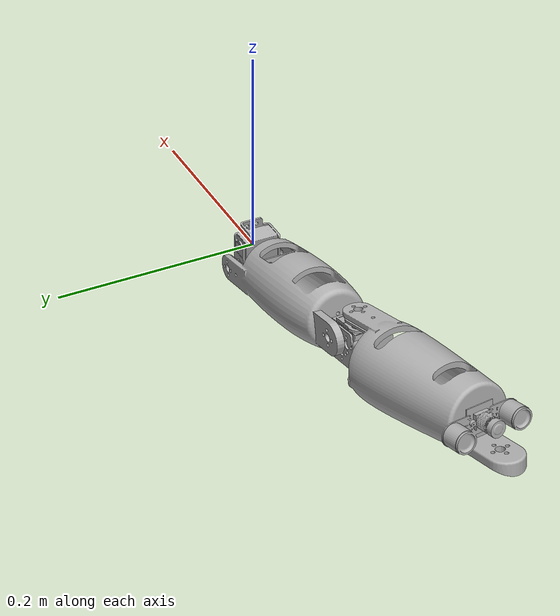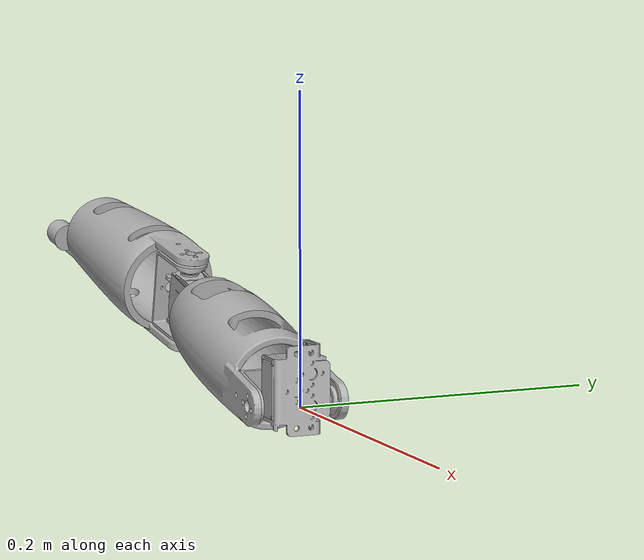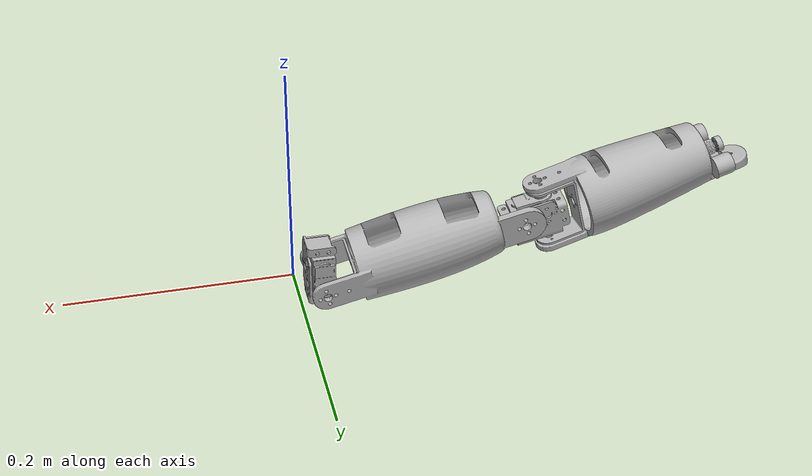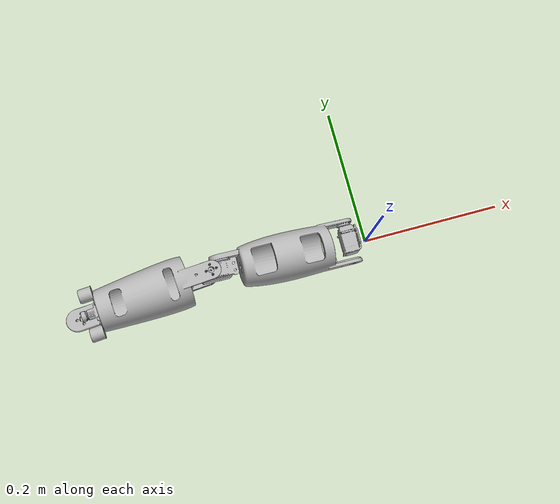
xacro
<?xml version="1.0" ?>
<robot name="left_arm" xmlns:xacro="http://www.ros.org/wiki/xacro">

<xacro:include filename="$(find left_arm_description)/urdf/materials.xacro" />
<xacro:include filename="$(find left_arm_description)/urdf/left_arm.trans" />
<xacro:include filename="$(find left_arm_description)/urdf/left_arm.gazebo" />
<link name="base_link">
  <inertial>
    <origin xyz="-0.02290775440148833 0.006539105343985077 0.008685384943102274" rpy="0 0 0"/>
    <mass value="0.28416481806119953"/>
    <inertia ixx="8e-05" iyy="5.8e-05" izz="4.7e-05" ixy="0.0" iyz="0.0" ixz="0.0"/>
  </inertial>
  <visual>
    <origin xyz="0 0 0" rpy="0 0 0"/>
    <geometry>
      <mesh filename="package://left_arm_description/meshes/base_link.stl" scale="0.001 0.001 0.001"/>
    </geometry>
    <material name="silver"/>
  </visual>
  <collision>
    <origin xyz="0 0 0" rpy="0 0 0"/>
    <geometry>
      <mesh filename="package://left_arm_description/meshes/base_link.stl" scale="0.001 0.001 0.001"/>
    </geometry>
  </collision>
</link>

<link name="Motor20connector_u_1">
  <inertial>
    <origin xyz="-0.03631019797155113 -0.017212960401345286 -0.012552193899020072" rpy="0 0 0"/>
    <mass value="0.018830430952545957"/>
    <inertia ixx="1.1e-05" iyy="4e-06" izz="1.3e-05" ixy="-1e-06" iyz="0.0" ixz="0.0"/>
  </inertial>
  <visual>
    <origin xyz="0.003203 -0.026824 -0.011384" rpy="0 0 0"/>
    <geometry>
      <mesh filename="package://left_arm_description/meshes/Motor20connector_u_1.stl" scale="0.001 0.001 0.001"/>
    </geometry>
    <material name="silver"/>
  </visual>
  <collision>
    <origin xyz="0.003203 -0.026824 -0.011384" rpy="0 0 0"/>
    <geometry>
      <mesh filename="package://left_arm_description/meshes/Motor20connector_u_1.stl" scale="0.001 0.001 0.001"/>
    </geometry>
  </collision>
</link>

<link name="Hindarm_1">
  <inertial>
    <origin xyz="-0.09719462433982218 0.02851065157935273 -0.0025305626709421847" rpy="0 0 0"/>
    <mass value="0.1761222866304953"/>
    <inertia ixx="0.000154" iyy="0.000457" izz="0.000483" ixy="1.5e-05" iyz="-0.0" ixz="1e-06"/>
  </inertial>
  <visual>
    <origin xyz="0.023977 0.021706 0.001319" rpy="0 0 0"/>
    <geometry>
      <mesh filename="package://left_arm_description/meshes/Hindarm_1.stl" scale="0.001 0.001 0.001"/>
    </geometry>
    <material name="silver"/>
  </visual>
  <collision>
    <origin xyz="0.023977 0.021706 0.001319" rpy="0 0 0"/>
    <geometry>
      <mesh filename="package://left_arm_description/meshes/Hindarm_1.stl" scale="0.001 0.001 0.001"/>
    </geometry>
  </collision>
</link>

<link name="Motor20_1">
  <inertial>
    <origin xyz="-0.010403314315509532 -0.012481126446424365 -0.0058413114169923236" rpy="0 0 0"/>
    <mass value="0.28416451045523133"/>
    <inertia ixx="4.7e-05" iyy="8e-05" izz="5.8e-05" ixy="0.0" iyz="0.0" ixz="0.0"/>
  </inertial>
  <visual>
    <origin xyz="0.208277 -0.02179 0.001074" rpy="0 0 0"/>
    <geometry>
      <mesh filename="package://left_arm_description/meshes/Motor20_1.stl" scale="0.001 0.001 0.001"/>
    </geometry>
    <material name="silver"/>
  </visual>
  <collision>
    <origin xyz="0.208277 -0.02179 0.001074" rpy="0 0 0"/>
    <geometry>
      <mesh filename="package://left_arm_description/meshes/Motor20_1.stl" scale="0.001 0.001 0.001"/>
    </geometry>
  </collision>
</link>

<link name="Motor20connector_l_1">
  <inertial>
    <origin xyz="-0.015558387909464705 0.0003071884907786711 -0.018162478640281907" rpy="0 0 0"/>
    <mass value="0.018830430952507915"/>
    <inertia ixx="1.1e-05" iyy="1.3e-05" izz="4e-06" ixy="0.0" iyz="0.0" ixz="-1e-06"/>
  </inertial>
  <visual>
    <origin xyz="0.228656 -0.00824 -0.014353" rpy="0 0 0"/>
    <geometry>
      <mesh filename="package://left_arm_description/meshes/Motor20connector_l_1.stl" scale="0.001 0.001 0.001"/>
    </geometry>
    <material name="silver"/>
  </visual>
  <collision>
    <origin xyz="0.228656 -0.00824 -0.014353" rpy="0 0 0"/>
    <geometry>
      <mesh filename="package://left_arm_description/meshes/Motor20connector_l_1.stl" scale="0.001 0.001 0.001"/>
    </geometry>
  </collision>
</link>

<link name="Forearm_1">
  <inertial>
    <origin xyz="0.11129953363997974 0.01978427716656317 -0.0047584242271354596" rpy="0 0 0"/>
    <mass value="0.17930247570309918"/>
    <inertia ixx="0.000159" iyy="0.000471" izz="0.000459" ixy="7e-06" iyz="0.0" ixz="-2.4e-05"/>
  </inertial>
  <visual>
    <origin xyz="0.433779 0.009567 0.004929" rpy="0 0 0"/>
    <geometry>
      <mesh filename="package://left_arm_description/meshes/Forearm_1.stl" scale="0.001 0.001 0.001"/>
    </geometry>
    <material name="silver"/>
  </visual>
  <collision>
    <origin xyz="0.433779 0.009567 0.004929" rpy="0 0 0"/>
    <geometry>
      <mesh filename="package://left_arm_description/meshes/Forearm_1.stl" scale="0.001 0.001 0.001"/>
    </geometry>
  </collision>
</link>

<link name="Camera_v1_1">
  <inertial>
    <origin xyz="-0.008234997454120874 0.00018084011869054853 -0.0016887204742087637" rpy="0 0 0"/>
    <mass value="0.050050057182618145"/>
    <inertia ixx="2.1e-05" iyy="4e-06" izz="2.2e-05" ixy="-0.0" iyz="0.0" ixz="-0.0"/>
  </inertial>
  <visual>
    <origin xyz="0.380451 -0.011453 0.006846" rpy="0 0 0"/>
    <geometry>
      <mesh filename="package://left_arm_description/meshes/Camera_v1_1.stl" scale="0.001 0.001 0.001"/>
    </geometry>
    <material name="silver"/>
  </visual>
  <collision>
    <origin xyz="0.380451 -0.011453 0.006846" rpy="0 0 0"/>
    <geometry>
      <mesh filename="package://left_arm_description/meshes/Camera_v1_1.stl" scale="0.001 0.001 0.001"/>
    </geometry>
  </collision>
</link>

<joint name="Revolute 1" type="continuous">
  <origin xyz="-0.003203 0.026824 0.011384" rpy="0 0 0"/>
  <parent link="base_link"/>
  <child link="Motor20connector_u_1"/>
  <axis xyz="0.0 1.0 -0.0"/>
</joint>

<joint name="Rigid 3" type="fixed">
  <origin xyz="-0.020774 -0.04853 -0.012703" rpy="0 0 0"/>
  <parent link="Motor20connector_u_1"/>
  <child link="Hindarm_1"/>
</joint>

<joint name="Rigid 4" type="fixed">
  <origin xyz="-0.1843 0.043496 0.000245" rpy="0 0 0"/>
  <parent link="Hindarm_1"/>
  <child link="Motor20_1"/>
</joint>

<joint name="Revolute 5" type="continuous">
  <origin xyz="-0.020379 -0.01355 0.015427" rpy="0 0 0"/>
  <parent link="Motor20_1"/>
  <child link="Motor20connector_l_1"/>
  <axis xyz="0.001328 0.0 0.999999"/>
</joint>

<joint name="Rigid 7" type="fixed">
  <origin xyz="-0.205123 -0.017807 -0.019282" rpy="0 0 0"/>
  <parent link="Motor20connector_l_1"/>
  <child link="Forearm_1"/>
</joint>

<joint name="Rigid 8" type="fixed">
  <origin xyz="0.053328 0.02102 -0.001917" rpy="0 0 0"/>
  <parent link="Forearm_1"/>
  <child link="Camera_v1_1"/>
</joint>

</robot>

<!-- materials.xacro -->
<robot name="left_arm" xmlns:xacro="http://www.ros.org/wiki/xacro" >

<material name="silver">
  <color rgba="0.700 0.700 0.700 1.000"/>
</material>

</robot>

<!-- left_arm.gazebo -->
<robot name="left_arm" xmlns:xacro="http://www.ros.org/wiki/xacro" >

<xacro:property name="body_color" value="Gazebo/Silver" />

<gazebo>
  <plugin name="control" filename="libgazebo_ros_control.so"/>
</gazebo>
<gazebo reference="base_link">
  <material>${body_color}</material>
  <mu1>0.2</mu1>
  <mu2>0.2</mu2>
  <selfCollide>true</selfCollide>
  <gravity>true</gravity>
</gazebo>

<gazebo reference="Motor20connector_u_1">
  <material>${body_color}</material>
  <mu1>0.2</mu1>
  <mu2>0.2</mu2>
  <selfCollide>true</selfCollide>
</gazebo>

<gazebo reference="Hindarm_1">
  <material>${body_color}</material>
  <mu1>0.2</mu1>
  <mu2>0.2</mu2>
  <selfCollide>true</selfCollide>
</gazebo>

<gazebo reference="Motor20_1">
  <material>${body_color}</material>
  <mu1>0.2</mu1>
  <mu2>0.2</mu2>
  <selfCollide>true</selfCollide>
</gazebo>

<gazebo reference="Motor20connector_l_1">
  <material>${body_color}</material>
  <mu1>0.2</mu1>
  <mu2>0.2</mu2>
  <selfCollide>true</selfCollide>
</gazebo>

<gazebo reference="Forearm_1">
  <material>${body_color}</material>
  <mu1>0.2</mu1>
  <mu2>0.2</mu2>
  <selfCollide>true</selfCollide>
</gazebo>

<gazebo reference="Camera_v1_1">
  <material>${body_color}</material>
  <mu1>0.2</mu1>
  <mu2>0.2</mu2>
  <selfCollide>true</selfCollide>
</gazebo>

</robot>
